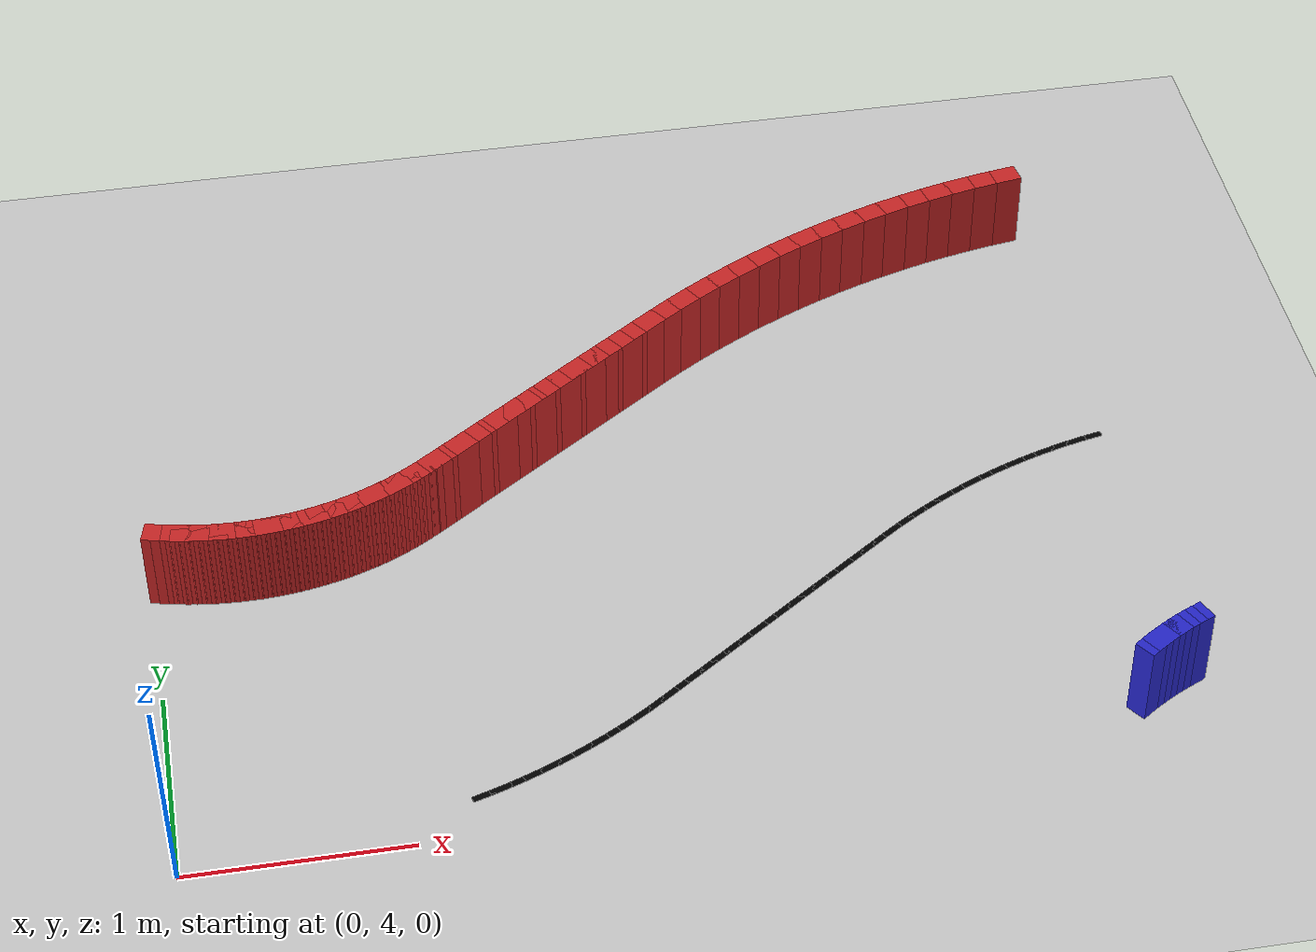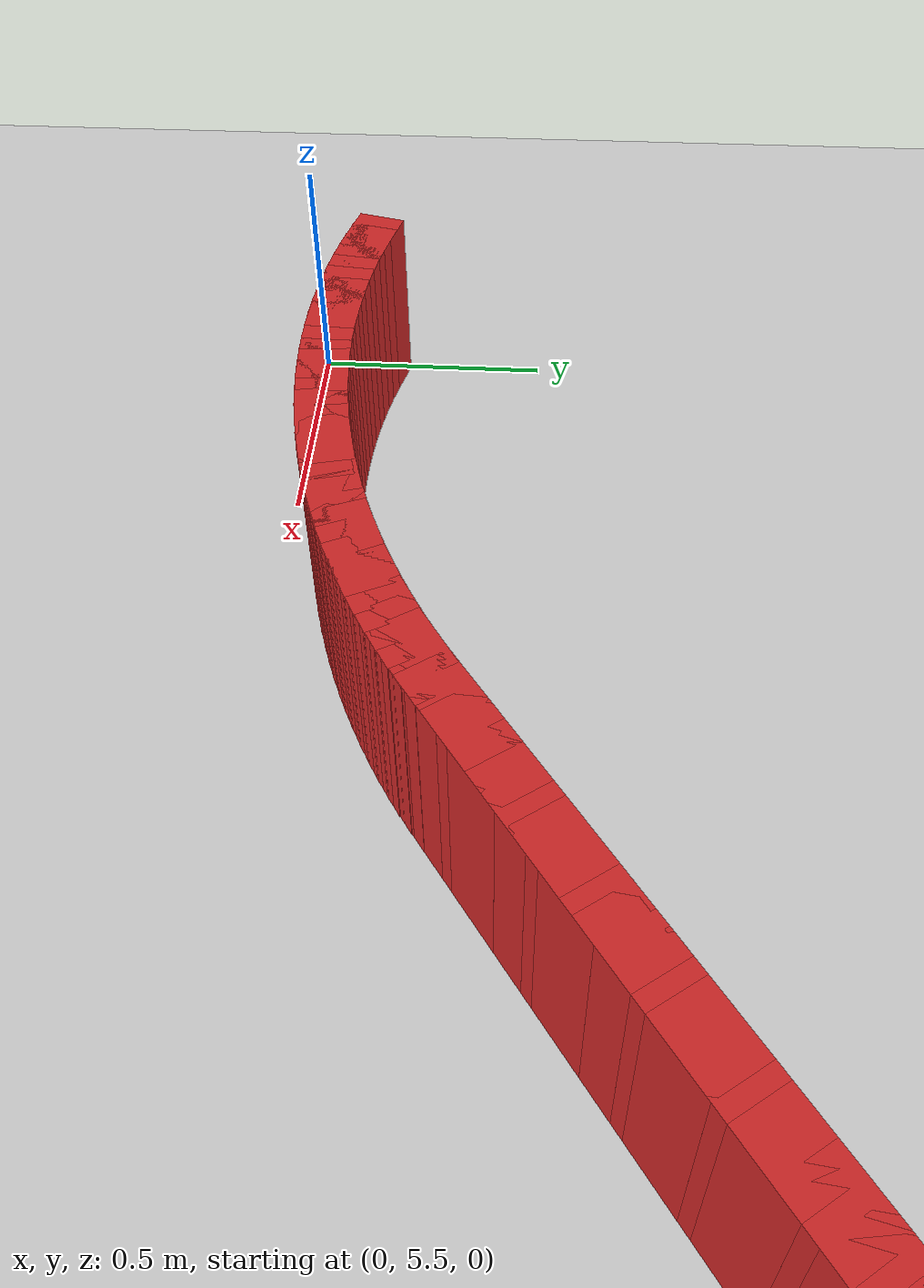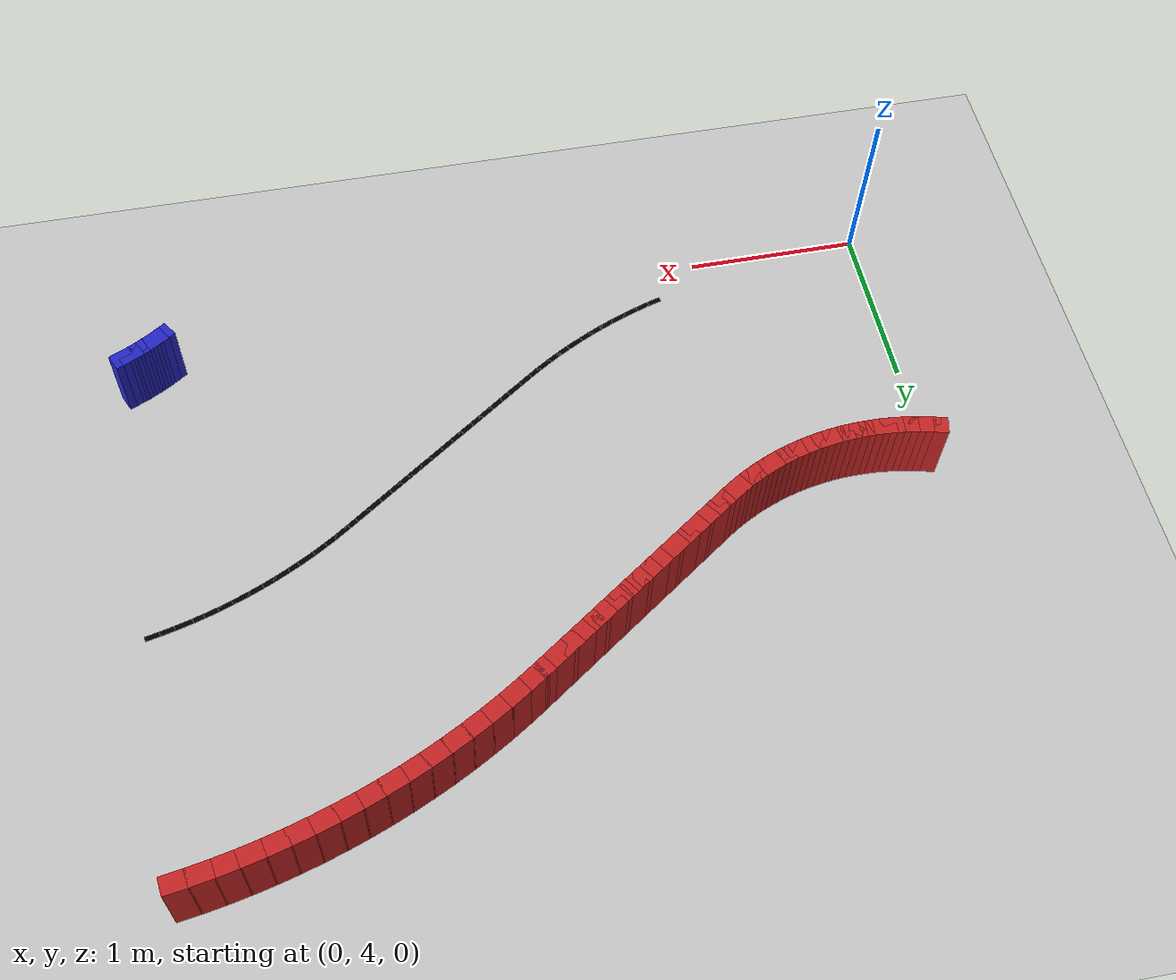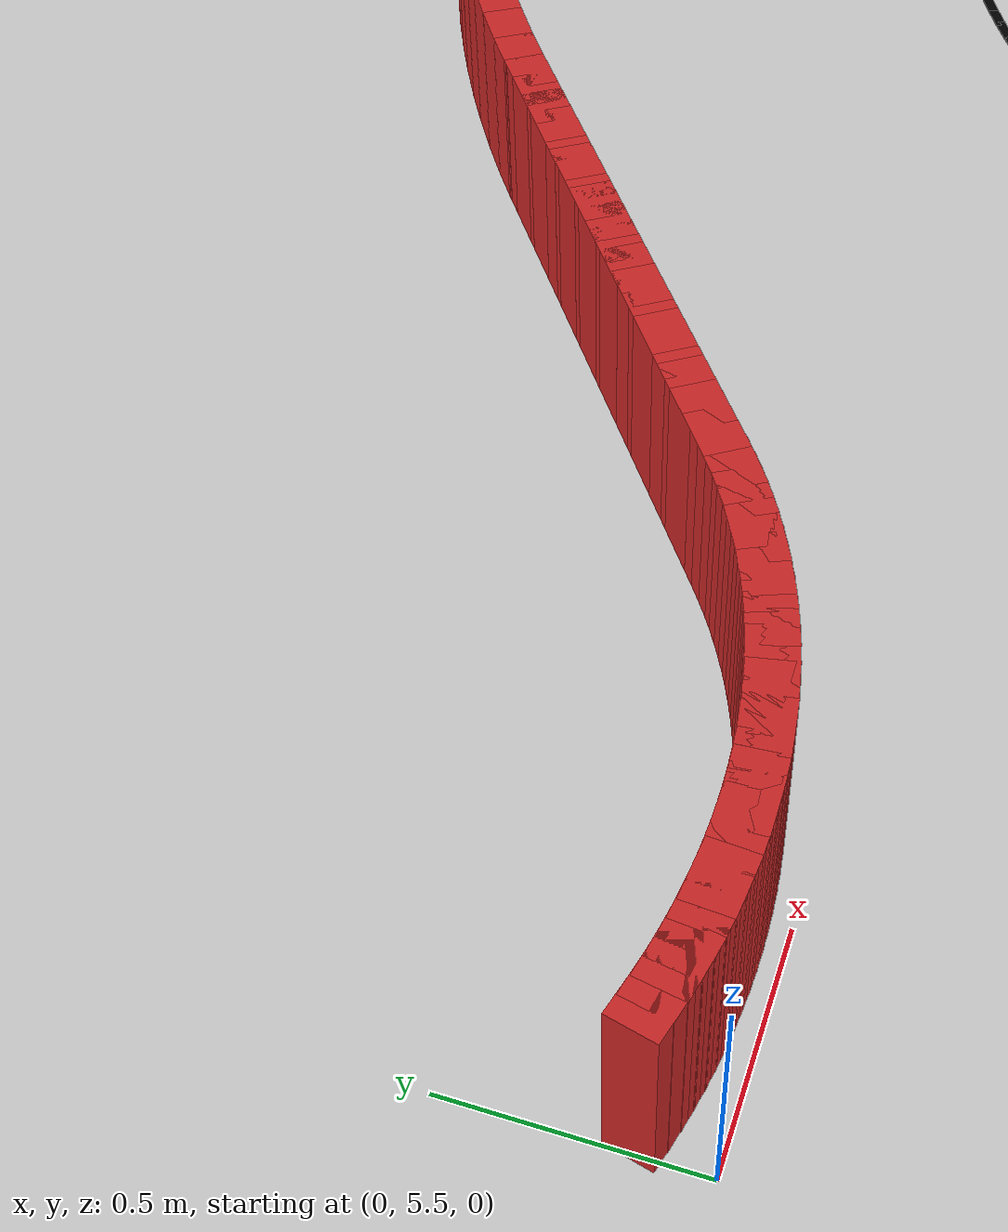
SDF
<sdf version="1.6">
 <world name="new_race_track">
  <include><uri>model://ground_plane</uri></include>
  <include><uri>model://sun</uri></include>
  <model name="iw_562">
   <static>true</static>
   <pose>4.4143 4.3629 0.200 0 0 -2.7112</pose>
   <link name="l">
    <collision name="c"><geometry><box><size>0.1333 0.1 0.4</size></box></geometry></collision>
    <visual name="v">
     <geometry><box><size>0.1333 0.1 0.4</size></box></geometry>
     <material><ambient>0.15 0.15 0.8 1</ambient><diffuse>0.15 0.15 0.8 1</diffuse></material>
    </visual>
   </link>
  </model>
  <model name="iw_563">
   <static>true</static>
   <pose>4.3767 4.3450 0.200 0 0 -2.6834</pose>
   <link name="l">
    <collision name="c"><geometry><box><size>0.1333 0.1 0.4</size></box></geometry></collision>
    <visual name="v">
     <geometry><box><size>0.1333 0.1 0.4</size></box></geometry>
     <material><ambient>0.15 0.15 0.8 1</ambient><diffuse>0.15 0.15 0.8 1</diffuse></material>
    </visual>
   </link>
  </model>
  <model name="iw_564">
   <static>true</static>
   <pose>4.3396 4.3261 0.200 0 0 -2.6557</pose>
   <link name="l">
    <collision name="c"><geometry><box><size>0.1333 0.1 0.4</size></box></geometry></collision>
    <visual name="v">
     <geometry><box><size>0.1333 0.1 0.4</size></box></geometry>
     <material><ambient>0.15 0.15 0.8 1</ambient><diffuse>0.15 0.15 0.8 1</diffuse></material>
    </visual>
   </link>
  </model>
  <model name="iw_565">
   <static>true</static>
   <pose>4.3031 4.3062 0.200 0 0 -2.6279</pose>
   <link name="l">
    <collision name="c"><geometry><box><size>0.1333 0.1 0.4</size></box></geometry></collision>
    <visual name="v">
     <geometry><box><size>0.1333 0.1 0.4</size></box></geometry>
     <material><ambient>0.15 0.15 0.8 1</ambient><diffuse>0.15 0.15 0.8 1</diffuse></material>
    </visual>
   </link>
  </model>
  <model name="iw_566">
   <static>true</static>
   <pose>4.2671 4.2852 0.200 0 0 -2.6001</pose>
   <link name="l">
    <collision name="c"><geometry><box><size>0.1333 0.1 0.4</size></box></geometry></collision>
    <visual name="v">
     <geometry><box><size>0.1333 0.1 0.4</size></box></geometry>
     <material><ambient>0.15 0.15 0.8 1</ambient><diffuse>0.15 0.15 0.8 1</diffuse></material>
    </visual>
   </link>
  </model>
  <model name="iw_567">
   <static>true</static>
   <pose>4.2317 4.2632 0.200 0 0 -2.5724</pose>
   <link name="l">
    <collision name="c"><geometry><box><size>0.1333 0.1 0.4</size></box></geometry></collision>
    <visual name="v">
     <geometry><box><size>0.1333 0.1 0.4</size></box></geometry>
     <material><ambient>0.15 0.15 0.8 1</ambient><diffuse>0.15 0.15 0.8 1</diffuse></material>
    </visual>
   </link>
  </model>
  <model name="iw_568">
   <static>true</static>
   <pose>4.1969 4.2403 0.200 0 0 -2.5446</pose>
   <link name="l">
    <collision name="c"><geometry><box><size>0.1333 0.1 0.4</size></box></geometry></collision>
    <visual name="v">
     <geometry><box><size>0.1333 0.1 0.4</size></box></geometry>
     <material><ambient>0.15 0.15 0.8 1</ambient><diffuse>0.15 0.15 0.8 1</diffuse></material>
    </visual>
   </link>
  </model>
  <model name="ow_552">
   <static>true</static>
   <pose>4.3555 7.4473 0.200 0 0 -2.9889</pose>
   <link name="l">
    <collision name="c"><geometry><box><size>0.1333 0.1 0.4</size></box></geometry></collision>
    <visual name="v">
     <geometry><box><size>0.1333 0.1 0.4</size></box></geometry>
     <material><ambient>0.8 0.15 0.15 1</ambient><diffuse>0.8 0.15 0.15 1</diffuse></material>
    </visual>
   </link>
  </model>
  <model name="ow_553">
   <static>true</static>
   <pose>4.2323 7.4266 0.200 0 0 -2.9611</pose>
   <link name="l">
    <collision name="c"><geometry><box><size>0.1333 0.1 0.4</size></box></geometry></collision>
    <visual name="v">
     <geometry><box><size>0.1333 0.1 0.4</size></box></geometry>
     <material><ambient>0.8 0.15 0.15 1</ambient><diffuse>0.8 0.15 0.15 1</diffuse></material>
    </visual>
   </link>
  </model>
  <model name="ow_554">
   <static>true</static>
   <pose>4.1097 7.4025 0.200 0 0 -2.9333</pose>
   <link name="l">
    <collision name="c"><geometry><box><size>0.1333 0.1 0.4</size></box></geometry></collision>
    <visual name="v">
     <geometry><box><size>0.1333 0.1 0.4</size></box></geometry>
     <material><ambient>0.8 0.15 0.15 1</ambient><diffuse>0.8 0.15 0.15 1</diffuse></material>
    </visual>
   </link>
  </model>
  <model name="ow_555">
   <static>true</static>
   <pose>3.9878 7.3750 0.200 0 0 -2.9056</pose>
   <link name="l">
    <collision name="c"><geometry><box><size>0.1333 0.1 0.4</size></box></geometry></collision>
    <visual name="v">
     <geometry><box><size>0.1333 0.1 0.4</size></box></geometry>
     <material><ambient>0.8 0.15 0.15 1</ambient><diffuse>0.8 0.15 0.15 1</diffuse></material>
    </visual>
   </link>
  </model>
  <model name="ow_556">
   <static>true</static>
   <pose>3.8668 7.3441 0.200 0 0 -2.8778</pose>
   <link name="l">
    <collision name="c"><geometry><box><size>0.1333 0.1 0.4</size></box></geometry></collision>
    <visual name="v">
     <geometry><box><size>0.1333 0.1 0.4</size></box></geometry>
     <material><ambient>0.8 0.15 0.15 1</ambient><diffuse>0.8 0.15 0.15 1</diffuse></material>
    </visual>
   </link>
  </model>
  <model name="ow_557">
   <static>true</static>
   <pose>3.7466 7.3098 0.200 0 0 -2.8500</pose>
   <link name="l">
    <collision name="c"><geometry><box><size>0.1333 0.1 0.4</size></box></geometry></collision>
    <visual name="v">
     <geometry><box><size>0.1333 0.1 0.4</size></box></geometry>
     <material><ambient>0.8 0.15 0.15 1</ambient><diffuse>0.8 0.15 0.15 1</diffuse></material>
    </visual>
   </link>
  </model>
  <model name="ow_558">
   <static>true</static>
   <pose>3.6275 7.2723 0.200 0 0 -2.8223</pose>
   <link name="l">
    <collision name="c"><geometry><box><size>0.1333 0.1 0.4</size></box></geometry></collision>
    <visual name="v">
     <geometry><box><size>0.1333 0.1 0.4</size></box></geometry>
     <material><ambient>0.8 0.15 0.15 1</ambient><diffuse>0.8 0.15 0.15 1</diffuse></material>
    </visual>
   </link>
  </model>
  <model name="ow_559">
   <static>true</static>
   <pose>3.5094 7.2314 0.200 0 0 -2.7945</pose>
   <link name="l">
    <collision name="c"><geometry><box><size>0.1333 0.1 0.4</size></box></geometry></collision>
    <visual name="v">
     <geometry><box><size>0.1333 0.1 0.4</size></box></geometry>
     <material><ambient>0.8 0.15 0.15 1</ambient><diffuse>0.8 0.15 0.15 1</diffuse></material>
    </visual>
   </link>
  </model>
  <model name="ow_560">
   <static>true</static>
   <pose>3.3925 7.1873 0.200 0 0 -2.7667</pose>
   <link name="l">
    <collision name="c"><geometry><box><size>0.1333 0.1 0.4</size></box></geometry></collision>
    <visual name="v">
     <geometry><box><size>0.1333 0.1 0.4</size></box></geometry>
     <material><ambient>0.8 0.15 0.15 1</ambient><diffuse>0.8 0.15 0.15 1</diffuse></material>
    </visual>
   </link>
  </model>
  <model name="ow_561">
   <static>true</static>
   <pose>3.2769 7.1399 0.200 0 0 -2.7390</pose>
   <link name="l">
    <collision name="c"><geometry><box><size>0.1333 0.1 0.4</size></box></geometry></collision>
    <visual name="v">
     <geometry><box><size>0.1333 0.1 0.4</size></box></geometry>
     <material><ambient>0.8 0.15 0.15 1</ambient><diffuse>0.8 0.15 0.15 1</diffuse></material>
    </visual>
   </link>
  </model>
  <model name="ow_562">
   <static>true</static>
   <pose>3.1626 7.0894 0.200 0 0 -2.7112</pose>
   <link name="l">
    <collision name="c"><geometry><box><size>0.1333 0.1 0.4</size></box></geometry></collision>
    <visual name="v">
     <geometry><box><size>0.1333 0.1 0.4</size></box></geometry>
     <material><ambient>0.8 0.15 0.15 1</ambient><diffuse>0.8 0.15 0.15 1</diffuse></material>
    </visual>
   </link>
  </model>
  <model name="ow_563">
   <static>true</static>
   <pose>3.0498 7.0357 0.200 0 0 -2.6834</pose>
   <link name="l">
    <collision name="c"><geometry><box><size>0.1333 0.1 0.4</size></box></geometry></collision>
    <visual name="v">
     <geometry><box><size>0.1333 0.1 0.4</size></box></geometry>
     <material><ambient>0.8 0.15 0.15 1</ambient><diffuse>0.8 0.15 0.15 1</diffuse></material>
    </visual>
   </link>
  </model>
  <model name="ow_564">
   <static>true</static>
   <pose>2.9386 6.9789 0.200 0 0 -2.6557</pose>
   <link name="l">
    <collision name="c"><geometry><box><size>0.1333 0.1 0.4</size></box></geometry></collision>
    <visual name="v">
     <geometry><box><size>0.1333 0.1 0.4</size></box></geometry>
     <material><ambient>0.8 0.15 0.15 1</ambient><diffuse>0.8 0.15 0.15 1</diffuse></material>
    </visual>
   </link>
  </model>
  <model name="ow_565">
   <static>true</static>
   <pose>2.8289 6.9190 0.200 0 0 -2.6279</pose>
   <link name="l">
    <collision name="c"><geometry><box><size>0.1333 0.1 0.4</size></box></geometry></collision>
    <visual name="v">
     <geometry><box><size>0.1333 0.1 0.4</size></box></geometry>
     <material><ambient>0.8 0.15 0.15 1</ambient><diffuse>0.8 0.15 0.15 1</diffuse></material>
    </visual>
   </link>
  </model>
  <model name="ow_566">
   <static>true</static>
   <pose>2.7209 6.8561 0.200 0 0 -2.6001</pose>
   <link name="l">
    <collision name="c"><geometry><box><size>0.1333 0.1 0.4</size></box></geometry></collision>
    <visual name="v">
     <geometry><box><size>0.1333 0.1 0.4</size></box></geometry>
     <material><ambient>0.8 0.15 0.15 1</ambient><diffuse>0.8 0.15 0.15 1</diffuse></material>
    </visual>
   </link>
  </model>
  <model name="ow_567">
   <static>true</static>
   <pose>2.6148 6.7902 0.200 0 0 -2.5724</pose>
   <link name="l">
    <collision name="c"><geometry><box><size>0.1333 0.1 0.4</size></box></geometry></collision>
    <visual name="v">
     <geometry><box><size>0.1333 0.1 0.4</size></box></geometry>
     <material><ambient>0.8 0.15 0.15 1</ambient><diffuse>0.8 0.15 0.15 1</diffuse></material>
    </visual>
   </link>
  </model>
  <model name="ow_568">
   <static>true</static>
   <pose>2.5105 6.7214 0.200 0 0 -2.5446</pose>
   <link name="l">
    <collision name="c"><geometry><box><size>0.1333 0.1 0.4</size></box></geometry></collision>
    <visual name="v">
     <geometry><box><size>0.1333 0.1 0.4</size></box></geometry>
     <material><ambient>0.8 0.15 0.15 1</ambient><diffuse>0.8 0.15 0.15 1</diffuse></material>
    </visual>
   </link>
  </model>
  <model name="ow_569">
   <static>true</static>
   <pose>2.4261 6.6632 0.200 0 0 -2.5307</pose>
   <link name="l">
    <collision name="c"><geometry><box><size>0.1300 0.1 0.4</size></box></geometry></collision>
    <visual name="v">
     <geometry><box><size>0.1300 0.1 0.4</size></box></geometry>
     <material><ambient>0.8 0.15 0.15 1</ambient><diffuse>0.8 0.15 0.15 1</diffuse></material>
    </visual>
   </link>
  </model>
  <model name="ow_570">
   <static>true</static>
   <pose>2.3606 6.6174 0.200 0 0 -2.5307</pose>
   <link name="l">
    <collision name="c"><geometry><box><size>0.1300 0.1 0.4</size></box></geometry></collision>
    <visual name="v">
     <geometry><box><size>0.1300 0.1 0.4</size></box></geometry>
     <material><ambient>0.8 0.15 0.15 1</ambient><diffuse>0.8 0.15 0.15 1</diffuse></material>
    </visual>
   </link>
  </model>
  <model name="ow_571">
   <static>true</static>
   <pose>2.2951 6.5715 0.200 0 0 -2.5307</pose>
   <link name="l">
    <collision name="c"><geometry><box><size>0.1300 0.1 0.4</size></box></geometry></collision>
    <visual name="v">
     <geometry><box><size>0.1300 0.1 0.4</size></box></geometry>
     <material><ambient>0.8 0.15 0.15 1</ambient><diffuse>0.8 0.15 0.15 1</diffuse></material>
    </visual>
   </link>
  </model>
  <model name="ow_572">
   <static>true</static>
   <pose>2.2295 6.5256 0.200 0 0 -2.5307</pose>
   <link name="l">
    <collision name="c"><geometry><box><size>0.1300 0.1 0.4</size></box></geometry></collision>
    <visual name="v">
     <geometry><box><size>0.1300 0.1 0.4</size></box></geometry>
     <material><ambient>0.8 0.15 0.15 1</ambient><diffuse>0.8 0.15 0.15 1</diffuse></material>
    </visual>
   </link>
  </model>
  <model name="ow_573">
   <static>true</static>
   <pose>2.1640 6.4797 0.200 0 0 -2.5307</pose>
   <link name="l">
    <collision name="c"><geometry><box><size>0.1300 0.1 0.4</size></box></geometry></collision>
    <visual name="v">
     <geometry><box><size>0.1300 0.1 0.4</size></box></geometry>
     <material><ambient>0.8 0.15 0.15 1</ambient><diffuse>0.8 0.15 0.15 1</diffuse></material>
    </visual>
   </link>
  </model>
  <model name="ow_574">
   <static>true</static>
   <pose>2.0985 6.4338 0.200 0 0 -2.5307</pose>
   <link name="l">
    <collision name="c"><geometry><box><size>0.1300 0.1 0.4</size></box></geometry></collision>
    <visual name="v">
     <geometry><box><size>0.1300 0.1 0.4</size></box></geometry>
     <material><ambient>0.8 0.15 0.15 1</ambient><diffuse>0.8 0.15 0.15 1</diffuse></material>
    </visual>
   </link>
  </model>
  <model name="ow_575">
   <static>true</static>
   <pose>2.0329 6.3879 0.200 0 0 -2.5307</pose>
   <link name="l">
    <collision name="c"><geometry><box><size>0.1300 0.1 0.4</size></box></geometry></collision>
    <visual name="v">
     <geometry><box><size>0.1300 0.1 0.4</size></box></geometry>
     <material><ambient>0.8 0.15 0.15 1</ambient><diffuse>0.8 0.15 0.15 1</diffuse></material>
    </visual>
   </link>
  </model>
  <model name="ow_576">
   <static>true</static>
   <pose>1.9674 6.3420 0.200 0 0 -2.5307</pose>
   <link name="l">
    <collision name="c"><geometry><box><size>0.1300 0.1 0.4</size></box></geometry></collision>
    <visual name="v">
     <geometry><box><size>0.1300 0.1 0.4</size></box></geometry>
     <material><ambient>0.8 0.15 0.15 1</ambient><diffuse>0.8 0.15 0.15 1</diffuse></material>
    </visual>
   </link>
  </model>
  <model name="ow_577">
   <static>true</static>
   <pose>1.9019 6.2962 0.200 0 0 -2.5307</pose>
   <link name="l">
    <collision name="c"><geometry><box><size>0.1300 0.1 0.4</size></box></geometry></collision>
    <visual name="v">
     <geometry><box><size>0.1300 0.1 0.4</size></box></geometry>
     <material><ambient>0.8 0.15 0.15 1</ambient><diffuse>0.8 0.15 0.15 1</diffuse></material>
    </visual>
   </link>
  </model>
  <model name="ow_578">
   <static>true</static>
   <pose>1.8364 6.2503 0.200 0 0 -2.5307</pose>
   <link name="l">
    <collision name="c"><geometry><box><size>0.1300 0.1 0.4</size></box></geometry></collision>
    <visual name="v">
     <geometry><box><size>0.1300 0.1 0.4</size></box></geometry>
     <material><ambient>0.8 0.15 0.15 1</ambient><diffuse>0.8 0.15 0.15 1</diffuse></material>
    </visual>
   </link>
  </model>
  <model name="ow_579">
   <static>true</static>
   <pose>1.7708 6.2044 0.200 0 0 -2.5307</pose>
   <link name="l">
    <collision name="c"><geometry><box><size>0.1300 0.1 0.4</size></box></geometry></collision>
    <visual name="v">
     <geometry><box><size>0.1300 0.1 0.4</size></box></geometry>
     <material><ambient>0.8 0.15 0.15 1</ambient><diffuse>0.8 0.15 0.15 1</diffuse></material>
    </visual>
   </link>
  </model>
  <model name="ow_580">
   <static>true</static>
   <pose>1.7053 6.1585 0.200 0 0 -2.5307</pose>
   <link name="l">
    <collision name="c"><geometry><box><size>0.1300 0.1 0.4</size></box></geometry></collision>
    <visual name="v">
     <geometry><box><size>0.1300 0.1 0.4</size></box></geometry>
     <material><ambient>0.8 0.15 0.15 1</ambient><diffuse>0.8 0.15 0.15 1</diffuse></material>
    </visual>
   </link>
  </model>
  <model name="ow_581">
   <static>true</static>
   <pose>1.6398 6.1126 0.200 0 0 -2.5307</pose>
   <link name="l">
    <collision name="c"><geometry><box><size>0.1300 0.1 0.4</size></box></geometry></collision>
    <visual name="v">
     <geometry><box><size>0.1300 0.1 0.4</size></box></geometry>
     <material><ambient>0.8 0.15 0.15 1</ambient><diffuse>0.8 0.15 0.15 1</diffuse></material>
    </visual>
   </link>
  </model>
  <model name="ow_582">
   <static>true</static>
   <pose>1.5742 6.0667 0.200 0 0 -2.5307</pose>
   <link name="l">
    <collision name="c"><geometry><box><size>0.1300 0.1 0.4</size></box></geometry></collision>
    <visual name="v">
     <geometry><box><size>0.1300 0.1 0.4</size></box></geometry>
     <material><ambient>0.8 0.15 0.15 1</ambient><diffuse>0.8 0.15 0.15 1</diffuse></material>
    </visual>
   </link>
  </model>
  <model name="ow_583">
   <static>true</static>
   <pose>1.5087 6.0208 0.200 0 0 -2.5307</pose>
   <link name="l">
    <collision name="c"><geometry><box><size>0.1300 0.1 0.4</size></box></geometry></collision>
    <visual name="v">
     <geometry><box><size>0.1300 0.1 0.4</size></box></geometry>
     <material><ambient>0.8 0.15 0.15 1</ambient><diffuse>0.8 0.15 0.15 1</diffuse></material>
    </visual>
   </link>
  </model>
  <model name="ow_584">
   <static>true</static>
   <pose>1.4432 5.9749 0.200 0 0 -2.5307</pose>
   <link name="l">
    <collision name="c"><geometry><box><size>0.1300 0.1 0.4</size></box></geometry></collision>
    <visual name="v">
     <geometry><box><size>0.1300 0.1 0.4</size></box></geometry>
     <material><ambient>0.8 0.15 0.15 1</ambient><diffuse>0.8 0.15 0.15 1</diffuse></material>
    </visual>
   </link>
  </model>
  <model name="ow_585">
   <static>true</static>
   <pose>1.3776 5.9291 0.200 0 0 -2.5307</pose>
   <link name="l">
    <collision name="c"><geometry><box><size>0.1300 0.1 0.4</size></box></geometry></collision>
    <visual name="v">
     <geometry><box><size>0.1300 0.1 0.4</size></box></geometry>
     <material><ambient>0.8 0.15 0.15 1</ambient><diffuse>0.8 0.15 0.15 1</diffuse></material>
    </visual>
   </link>
  </model>
  <model name="ow_586">
   <static>true</static>
   <pose>1.3121 5.8832 0.200 0 0 -2.5307</pose>
   <link name="l">
    <collision name="c"><geometry><box><size>0.1300 0.1 0.4</size></box></geometry></collision>
    <visual name="v">
     <geometry><box><size>0.1300 0.1 0.4</size></box></geometry>
     <material><ambient>0.8 0.15 0.15 1</ambient><diffuse>0.8 0.15 0.15 1</diffuse></material>
    </visual>
   </link>
  </model>
  <model name="ow_587">
   <static>true</static>
   <pose>1.2624 5.8489 0.200 0 0 -2.5443</pose>
   <link name="l">
    <collision name="c"><geometry><box><size>0.1314 0.1 0.4</size></box></geometry></collision>
    <visual name="v">
     <geometry><box><size>0.1314 0.1 0.4</size></box></geometry>
     <material><ambient>0.8 0.15 0.15 1</ambient><diffuse>0.8 0.15 0.15 1</diffuse></material>
    </visual>
   </link>
  </model>
  <model name="ow_588">
   <static>true</static>
   <pose>1.2284 5.8265 0.200 0 0 -2.5715</pose>
   <link name="l">
    <collision name="c"><geometry><box><size>0.1314 0.1 0.4</size></box></geometry></collision>
    <visual name="v">
     <geometry><box><size>0.1314 0.1 0.4</size></box></geometry>
     <material><ambient>0.8 0.15 0.15 1</ambient><diffuse>0.8 0.15 0.15 1</diffuse></material>
    </visual>
   </link>
  </model>
  <model name="ow_589">
   <static>true</static>
   <pose>1.1939 5.8049 0.200 0 0 -2.5986</pose>
   <link name="l">
    <collision name="c"><geometry><box><size>0.1314 0.1 0.4</size></box></geometry></collision>
    <visual name="v">
     <geometry><box><size>0.1314 0.1 0.4</size></box></geometry>
     <material><ambient>0.8 0.15 0.15 1</ambient><diffuse>0.8 0.15 0.15 1</diffuse></material>
    </visual>
   </link>
  </model>
  <model name="ow_590">
   <static>true</static>
   <pose>1.1587 5.7844 0.200 0 0 -2.6258</pose>
   <link name="l">
    <collision name="c"><geometry><box><size>0.1314 0.1 0.4</size></box></geometry></collision>
    <visual name="v">
     <geometry><box><size>0.1314 0.1 0.4</size></box></geometry>
     <material><ambient>0.8 0.15 0.15 1</ambient><diffuse>0.8 0.15 0.15 1</diffuse></material>
    </visual>
   </link>
  </model>
  <model name="ow_591">
   <static>true</static>
   <pose>1.1230 5.7648 0.200 0 0 -2.6529</pose>
   <link name="l">
    <collision name="c"><geometry><box><size>0.1314 0.1 0.4</size></box></geometry></collision>
    <visual name="v">
     <geometry><box><size>0.1314 0.1 0.4</size></box></geometry>
     <material><ambient>0.8 0.15 0.15 1</ambient><diffuse>0.8 0.15 0.15 1</diffuse></material>
    </visual>
   </link>
  </model>
  <model name="ow_592">
   <static>true</static>
   <pose>1.0868 5.7462 0.200 0 0 -2.6801</pose>
   <link name="l">
    <collision name="c"><geometry><box><size>0.1314 0.1 0.4</size></box></geometry></collision>
    <visual name="v">
     <geometry><box><size>0.1314 0.1 0.4</size></box></geometry>
     <material><ambient>0.8 0.15 0.15 1</ambient><diffuse>0.8 0.15 0.15 1</diffuse></material>
    </visual>
   </link>
  </model>
  <model name="ow_593">
   <static>true</static>
   <pose>1.0501 5.7285 0.200 0 0 -2.7072</pose>
   <link name="l">
    <collision name="c"><geometry><box><size>0.1314 0.1 0.4</size></box></geometry></collision>
    <visual name="v">
     <geometry><box><size>0.1314 0.1 0.4</size></box></geometry>
     <material><ambient>0.8 0.15 0.15 1</ambient><diffuse>0.8 0.15 0.15 1</diffuse></material>
    </visual>
   </link>
  </model>
  <model name="ow_594">
   <static>true</static>
   <pose>1.0130 5.7119 0.200 0 0 -2.7343</pose>
   <link name="l">
    <collision name="c"><geometry><box><size>0.1314 0.1 0.4</size></box></geometry></collision>
    <visual name="v">
     <geometry><box><size>0.1314 0.1 0.4</size></box></geometry>
     <material><ambient>0.8 0.15 0.15 1</ambient><diffuse>0.8 0.15 0.15 1</diffuse></material>
    </visual>
   </link>
  </model>
  <model name="ow_595">
   <static>true</static>
   <pose>0.9754 5.6963 0.200 0 0 -2.7615</pose>
   <link name="l">
    <collision name="c"><geometry><box><size>0.1314 0.1 0.4</size></box></geometry></collision>
    <visual name="v">
     <geometry><box><size>0.1314 0.1 0.4</size></box></geometry>
     <material><ambient>0.8 0.15 0.15 1</ambient><diffuse>0.8 0.15 0.15 1</diffuse></material>
    </visual>
   </link>
  </model>
  <model name="ow_596">
   <static>true</static>
   <pose>0.9374 5.6817 0.200 0 0 -2.7886</pose>
   <link name="l">
    <collision name="c"><geometry><box><size>0.1314 0.1 0.4</size></box></geometry></collision>
    <visual name="v">
     <geometry><box><size>0.1314 0.1 0.4</size></box></geometry>
     <material><ambient>0.8 0.15 0.15 1</ambient><diffuse>0.8 0.15 0.15 1</diffuse></material>
    </visual>
   </link>
  </model>
  <model name="ow_597">
   <static>true</static>
   <pose>0.8990 5.6681 0.200 0 0 -2.8158</pose>
   <link name="l">
    <collision name="c"><geometry><box><size>0.1314 0.1 0.4</size></box></geometry></collision>
    <visual name="v">
     <geometry><box><size>0.1314 0.1 0.4</size></box></geometry>
     <material><ambient>0.8 0.15 0.15 1</ambient><diffuse>0.8 0.15 0.15 1</diffuse></material>
    </visual>
   </link>
  </model>
  <model name="ow_598">
   <static>true</static>
   <pose>0.8602 5.6556 0.200 0 0 -2.8429</pose>
   <link name="l">
    <collision name="c"><geometry><box><size>0.1314 0.1 0.4</size></box></geometry></collision>
    <visual name="v">
     <geometry><box><size>0.1314 0.1 0.4</size></box></geometry>
     <material><ambient>0.8 0.15 0.15 1</ambient><diffuse>0.8 0.15 0.15 1</diffuse></material>
    </visual>
   </link>
  </model>
  <model name="ow_599">
   <static>true</static>
   <pose>0.8211 5.6442 0.200 0 0 -2.8701</pose>
   <link name="l">
    <collision name="c"><geometry><box><size>0.1314 0.1 0.4</size></box></geometry></collision>
    <visual name="v">
     <geometry><box><size>0.1314 0.1 0.4</size></box></geometry>
     <material><ambient>0.8 0.15 0.15 1</ambient><diffuse>0.8 0.15 0.15 1</diffuse></material>
    </visual>
   </link>
  </model>
  <model name="ow_600">
   <static>true</static>
   <pose>0.7818 5.6338 0.200 0 0 -2.8972</pose>
   <link name="l">
    <collision name="c"><geometry><box><size>0.1314 0.1 0.4</size></box></geometry></collision>
    <visual name="v">
     <geometry><box><size>0.1314 0.1 0.4</size></box></geometry>
     <material><ambient>0.8 0.15 0.15 1</ambient><diffuse>0.8 0.15 0.15 1</diffuse></material>
    </visual>
   </link>
  </model>
  <model name="ow_601">
   <static>true</static>
   <pose>0.7421 5.6245 0.200 0 0 -2.9244</pose>
   <link name="l">
    <collision name="c"><geometry><box><size>0.1314 0.1 0.4</size></box></geometry></collision>
    <visual name="v">
     <geometry><box><size>0.1314 0.1 0.4</size></box></geometry>
     <material><ambient>0.8 0.15 0.15 1</ambient><diffuse>0.8 0.15 0.15 1</diffuse></material>
    </visual>
   </link>
  </model>
  <model name="ow_602">
   <static>true</static>
   <pose>0.7023 5.6162 0.200 0 0 -2.9515</pose>
   <link name="l">
    <collision name="c"><geometry><box><size>0.1314 0.1 0.4</size></box></geometry></collision>
    <visual name="v">
     <geometry><box><size>0.1314 0.1 0.4</size></box></geometry>
     <material><ambient>0.8 0.15 0.15 1</ambient><diffuse>0.8 0.15 0.15 1</diffuse></material>
    </visual>
   </link>
  </model>
  <model name="ow_603">
   <static>true</static>
   <pose>0.6622 5.6091 0.200 0 0 -2.9787</pose>
   <link name="l">
    <collision name="c"><geometry><box><size>0.1314 0.1 0.4</size></box></geometry></collision>
    <visual name="v">
     <geometry><box><size>0.1314 0.1 0.4</size></box></geometry>
     <material><ambient>0.8 0.15 0.15 1</ambient><diffuse>0.8 0.15 0.15 1</diffuse></material>
    </visual>
   </link>
  </model>
  <model name="ow_604">
   <static>true</static>
   <pose>0.6219 5.6030 0.200 0 0 -3.0058</pose>
   <link name="l">
    <collision name="c"><geometry><box><size>0.1314 0.1 0.4</size></box></geometry></collision>
    <visual name="v">
     <geometry><box><size>0.1314 0.1 0.4</size></box></geometry>
     <material><ambient>0.8 0.15 0.15 1</ambient><diffuse>0.8 0.15 0.15 1</diffuse></material>
    </visual>
   </link>
  </model>
  <model name="ow_605">
   <static>true</static>
   <pose>0.5815 5.5981 0.200 0 0 -3.0330</pose>
   <link name="l">
    <collision name="c"><geometry><box><size>0.1314 0.1 0.4</size></box></geometry></collision>
    <visual name="v">
     <geometry><box><size>0.1314 0.1 0.4</size></box></geometry>
     <material><ambient>0.8 0.15 0.15 1</ambient><diffuse>0.8 0.15 0.15 1</diffuse></material>
    </visual>
   </link>
  </model>
  <model name="ow_606">
   <static>true</static>
   <pose>0.5410 5.5942 0.200 0 0 -3.0601</pose>
   <link name="l">
    <collision name="c"><geometry><box><size>0.1314 0.1 0.4</size></box></geometry></collision>
    <visual name="v">
     <geometry><box><size>0.1314 0.1 0.4</size></box></geometry>
     <material><ambient>0.8 0.15 0.15 1</ambient><diffuse>0.8 0.15 0.15 1</diffuse></material>
    </visual>
   </link>
  </model>
  <model name="ow_607">
   <static>true</static>
   <pose>0.5004 5.5914 0.200 0 0 -3.0873</pose>
   <link name="l">
    <collision name="c"><geometry><box><size>0.1314 0.1 0.4</size></box></geometry></collision>
    <visual name="v">
     <geometry><box><size>0.1314 0.1 0.4</size></box></geometry>
     <material><ambient>0.8 0.15 0.15 1</ambient><diffuse>0.8 0.15 0.15 1</diffuse></material>
    </visual>
   </link>
  </model>
  <model name="ow_608">
   <static>true</static>
   <pose>0.4597 5.5898 0.200 0 0 -3.1144</pose>
   <link name="l">
    <collision name="c"><geometry><box><size>0.1314 0.1 0.4</size></box></geometry></collision>
    <visual name="v">
     <geometry><box><size>0.1314 0.1 0.4</size></box></geometry>
     <material><ambient>0.8 0.15 0.15 1</ambient><diffuse>0.8 0.15 0.15 1</diffuse></material>
    </visual>
   </link>
  </model>
  <model name="ow_609">
   <static>true</static>
   <pose>0.4190 5.5892 0.200 0 0 3.1416</pose>
   <link name="l">
    <collision name="c"><geometry><box><size>0.1314 0.1 0.4</size></box></geometry></collision>
    <visual name="v">
     <geometry><box><size>0.1314 0.1 0.4</size></box></geometry>
     <material><ambient>0.8 0.15 0.15 1</ambient><diffuse>0.8 0.15 0.15 1</diffuse></material>
    </visual>
   </link>
  </model>
  <model name="ow_610">
   <static>true</static>
   <pose>0.3783 5.5898 0.200 0 0 3.1144</pose>
   <link name="l">
    <collision name="c"><geometry><box><size>0.1314 0.1 0.4</size></box></geometry></collision>
    <visual name="v">
     <geometry><box><size>0.1314 0.1 0.4</size></box></geometry>
     <material><ambient>0.8 0.15 0.15 1</ambient><diffuse>0.8 0.15 0.15 1</diffuse></material>
    </visual>
   </link>
  </model>
  <model name="ow_611">
   <static>true</static>
   <pose>0.3376 5.5914 0.200 0 0 3.0873</pose>
   <link name="l">
    <collision name="c"><geometry><box><size>0.1314 0.1 0.4</size></box></geometry></collision>
    <visual name="v">
     <geometry><box><size>0.1314 0.1 0.4</size></box></geometry>
     <material><ambient>0.8 0.15 0.15 1</ambient><diffuse>0.8 0.15 0.15 1</diffuse></material>
    </visual>
   </link>
  </model>
  <model name="ow_612">
   <static>true</static>
   <pose>0.2969 5.5942 0.200 0 0 3.0601</pose>
   <link name="l">
    <collision name="c"><geometry><box><size>0.1314 0.1 0.4</size></box></geometry></collision>
    <visual name="v">
     <geometry><box><size>0.1314 0.1 0.4</size></box></geometry>
     <material><ambient>0.8 0.15 0.15 1</ambient><diffuse>0.8 0.15 0.15 1</diffuse></material>
    </visual>
   </link>
  </model>
  <model name="ow_613">
   <static>true</static>
   <pose>0.2564 5.5981 0.200 0 0 3.0330</pose>
   <link name="l">
    <collision name="c"><geometry><box><size>0.1314 0.1 0.4</size></box></geometry></collision>
    <visual name="v">
     <geometry><box><size>0.1314 0.1 0.4</size></box></geometry>
     <material><ambient>0.8 0.15 0.15 1</ambient><diffuse>0.8 0.15 0.15 1</diffuse></material>
    </visual>
   </link>
  </model>
  <model name="ow_614">
   <static>true</static>
   <pose>0.2160 5.6030 0.200 0 0 3.0058</pose>
   <link name="l">
    <collision name="c"><geometry><box><size>0.1314 0.1 0.4</size></box></geometry></collision>
    <visual name="v">
     <geometry><box><size>0.1314 0.1 0.4</size></box></geometry>
     <material><ambient>0.8 0.15 0.15 1</ambient><diffuse>0.8 0.15 0.15 1</diffuse></material>
    </visual>
   </link>
  </model>
  <model name="ow_615">
   <static>true</static>
   <pose>0.1757 5.6091 0.200 0 0 2.9787</pose>
   <link name="l">
    <collision name="c"><geometry><box><size>0.1314 0.1 0.4</size></box></geometry></collision>
    <visual name="v">
     <geometry><box><size>0.1314 0.1 0.4</size></box></geometry>
     <material><ambient>0.8 0.15 0.15 1</ambient><diffuse>0.8 0.15 0.15 1</diffuse></material>
    </visual>
   </link>
  </model>
  <model name="ow_616">
   <static>true</static>
   <pose>0.1357 5.6162 0.200 0 0 2.9515</pose>
   <link name="l">
    <collision name="c"><geometry><box><size>0.1314 0.1 0.4</size></box></geometry></collision>
    <visual name="v">
     <geometry><box><size>0.1314 0.1 0.4</size></box></geometry>
     <material><ambient>0.8 0.15 0.15 1</ambient><diffuse>0.8 0.15 0.15 1</diffuse></material>
    </visual>
   </link>
  </model>
  <model name="ow_617">
   <static>true</static>
   <pose>0.0958 5.6245 0.200 0 0 2.9244</pose>
   <link name="l">
    <collision name="c"><geometry><box><size>0.1314 0.1 0.4</size></box></geometry></collision>
    <visual name="v">
     <geometry><box><size>0.1314 0.1 0.4</size></box></geometry>
     <material><ambient>0.8 0.15 0.15 1</ambient><diffuse>0.8 0.15 0.15 1</diffuse></material>
    </visual>
   </link>
  </model>
  <model name="ow_618">
   <static>true</static>
   <pose>0.0561 5.6338 0.200 0 0 2.8972</pose>
   <link name="l">
    <collision name="c"><geometry><box><size>0.1314 0.1 0.4</size></box></geometry></collision>
    <visual name="v">
     <geometry><box><size>0.1314 0.1 0.4</size></box></geometry>
     <material><ambient>0.8 0.15 0.15 1</ambient><diffuse>0.8 0.15 0.15 1</diffuse></material>
    </visual>
   </link>
  </model>
  <model name="line_554">
   <static>true</static>
   <pose>4.4198 5.9349 0.002 0 0 -2.9333</pose>
   <link name="l">
    <visual name="v">
     <geometry><box><size>0.1033 0.03 0.002</size></box></geometry>
     <material><ambient>0 0 0 1</ambient><diffuse>0 0 0 1</diffuse></material>
    </visual>
   </link>
  </model>
  <model name="line_555">
   <static>true</static>
   <pose>4.3386 5.9166 0.002 0 0 -2.9056</pose>
   <link name="l">
    <visual name="v">
     <geometry><box><size>0.1033 0.03 0.002</size></box></geometry>
     <material><ambient>0 0 0 1</ambient><diffuse>0 0 0 1</diffuse></material>
    </visual>
   </link>
  </model>
  <model name="line_556">
   <static>true</static>
   <pose>4.2579 5.8960 0.002 0 0 -2.8778</pose>
   <link name="l">
    <visual name="v">
     <geometry><box><size>0.1033 0.03 0.002</size></box></geometry>
     <material><ambient>0 0 0 1</ambient><diffuse>0 0 0 1</diffuse></material>
    </visual>
   </link>
  </model>
  <model name="line_557">
   <static>true</static>
   <pose>4.1778 5.8731 0.002 0 0 -2.8500</pose>
   <link name="l">
    <visual name="v">
     <geometry><box><size>0.1033 0.03 0.002</size></box></geometry>
     <material><ambient>0 0 0 1</ambient><diffuse>0 0 0 1</diffuse></material>
    </visual>
   </link>
  </model>
  <model name="line_558">
   <static>true</static>
   <pose>4.0983 5.8481 0.002 0 0 -2.8223</pose>
   <link name="l">
    <visual name="v">
     <geometry><box><size>0.1033 0.03 0.002</size></box></geometry>
     <material><ambient>0 0 0 1</ambient><diffuse>0 0 0 1</diffuse></material>
    </visual>
   </link>
  </model>
  <model name="line_559">
   <static>true</static>
   <pose>4.0196 5.8208 0.002 0 0 -2.7945</pose>
   <link name="l">
    <visual name="v">
     <geometry><box><size>0.1033 0.03 0.002</size></box></geometry>
     <material><ambient>0 0 0 1</ambient><diffuse>0 0 0 1</diffuse></material>
    </visual>
   </link>
  </model>
  <model name="line_560">
   <static>true</static>
   <pose>3.9417 5.7914 0.002 0 0 -2.7667</pose>
   <link name="l">
    <visual name="v">
     <geometry><box><size>0.1033 0.03 0.002</size></box></geometry>
     <material><ambient>0 0 0 1</ambient><diffuse>0 0 0 1</diffuse></material>
    </visual>
   </link>
  </model>
  <model name="line_561">
   <static>true</static>
   <pose>3.8646 5.7599 0.002 0 0 -2.7390</pose>
   <link name="l">
    <visual name="v">
     <geometry><box><size>0.1033 0.03 0.002</size></box></geometry>
     <material><ambient>0 0 0 1</ambient><diffuse>0 0 0 1</diffuse></material>
    </visual>
   </link>
  </model>
  <model name="line_562">
   <static>true</static>
   <pose>3.7885 5.7262 0.002 0 0 -2.7112</pose>
   <link name="l">
    <visual name="v">
     <geometry><box><size>0.1033 0.03 0.002</size></box></geometry>
     <material><ambient>0 0 0 1</ambient><diffuse>0 0 0 1</diffuse></material>
    </visual>
   </link>
  </model>
  <model name="line_563">
   <static>true</static>
   <pose>3.7133 5.6904 0.002 0 0 -2.6834</pose>
   <link name="l">
    <visual name="v">
     <geometry><box><size>0.1033 0.03 0.002</size></box></geometry>
     <material><ambient>0 0 0 1</ambient><diffuse>0 0 0 1</diffuse></material>
    </visual>
   </link>
  </model>
  <model name="line_564">
   <static>true</static>
   <pose>3.6391 5.6525 0.002 0 0 -2.6557</pose>
   <link name="l">
    <visual name="v">
     <geometry><box><size>0.1033 0.03 0.002</size></box></geometry>
     <material><ambient>0 0 0 1</ambient><diffuse>0 0 0 1</diffuse></material>
    </visual>
   </link>
  </model>
  <model name="line_565">
   <static>true</static>
   <pose>3.5660 5.6126 0.002 0 0 -2.6279</pose>
   <link name="l">
    <visual name="v">
     <geometry><box><size>0.1033 0.03 0.002</size></box></geometry>
     <material><ambient>0 0 0 1</ambient><diffuse>0 0 0 1</diffuse></material>
    </visual>
   </link>
  </model>
  <model name="line_566">
   <static>true</static>
   <pose>3.4940 5.5706 0.002 0 0 -2.6001</pose>
   <link name="l">
    <visual name="v">
     <geometry><box><size>0.1033 0.03 0.002</size></box></geometry>
     <material><ambient>0 0 0 1</ambient><diffuse>0 0 0 1</diffuse></material>
    </visual>
   </link>
  </model>
  <model name="line_567">
   <static>true</static>
   <pose>3.4232 5.5267 0.002 0 0 -2.5724</pose>
   <link name="l">
    <visual name="v">
     <geometry><box><size>0.1033 0.03 0.002</size></box></geometry>
     <material><ambient>0 0 0 1</ambient><diffuse>0 0 0 1</diffuse></material>
    </visual>
   </link>
  </model>
  <model name="line_568">
   <static>true</static>
   <pose>3.3537 5.4809 0.002 0 0 -2.5446</pose>
   <link name="l">
    <visual name="v">
     <geometry><box><size>0.1033 0.03 0.002</size></box></geometry>
     <material><ambient>0 0 0 1</ambient><diffuse>0 0 0 1</diffuse></material>
    </visual>
   </link>
  </model>
  <model name="line_569">
   <static>true</static>
   <pose>3.2865 5.4345 0.002 0 0 -2.5307</pose>
   <link name="l">
    <visual name="v">
     <geometry><box><size>0.1000 0.03 0.002</size></box></geometry>
     <material><ambient>0 0 0 1</ambient><diffuse>0 0 0 1</diffuse></material>
    </visual>
   </link>
  </model>
  <model name="line_570">
   <static>true</static>
   <pose>3.2210 5.3886 0.002 0 0 -2.5307</pose>
   <link name="l">
    <visual name="v">
     <geometry><box><size>0.1000 0.03 0.002</size></box></geometry>
     <material><ambient>0 0 0 1</ambient><diffuse>0 0 0 1</diffuse></material>
    </visual>
   </link>
  </model>
  <model name="line_571">
   <static>true</static>
   <pose>3.1554 5.3427 0.002 0 0 -2.5307</pose>
   <link name="l">
    <visual name="v">
     <geometry><box><size>0.1000 0.03 0.002</size></box></geometry>
     <material><ambient>0 0 0 1</ambient><diffuse>0 0 0 1</diffuse></material>
    </visual>
   </link>
  </model>
  <model name="line_572">
   <static>true</static>
   <pose>3.0899 5.2969 0.002 0 0 -2.5307</pose>
   <link name="l">
    <visual name="v">
     <geometry><box><size>0.1000 0.03 0.002</size></box></geometry>
     <material><ambient>0 0 0 1</ambient><diffuse>0 0 0 1</diffuse></material>
    </visual>
   </link>
  </model>
  <model name="line_573">
   <static>true</static>
   <pose>3.0244 5.2510 0.002 0 0 -2.5307</pose>
   <link name="l">
    <visual name="v">
     <geometry><box><size>0.1000 0.03 0.002</size></box></geometry>
     <material><ambient>0 0 0 1</ambient><diffuse>0 0 0 1</diffuse></material>
    </visual>
   </link>
  </model>
  <model name="line_574">
   <static>true</static>
   <pose>2.9588 5.2051 0.002 0 0 -2.5307</pose>
   <link name="l">
    <visual name="v">
     <geometry><box><size>0.1000 0.03 0.002</size></box></geometry>
     <material><ambient>0 0 0 1</ambient><diffuse>0 0 0 1</diffuse></material>
    </visual>
   </link>
  </model>
  <model name="line_575">
   <static>true</static>
   <pose>2.8933 5.1592 0.002 0 0 -2.5307</pose>
   <link name="l">
    <visual name="v">
     <geometry><box><size>0.1000 0.03 0.002</size></box></geometry>
     <material><ambient>0 0 0 1</ambient><diffuse>0 0 0 1</diffuse></material>
    </visual>
   </link>
  </model>
  <model name="line_576">
   <static>true</static>
   <pose>2.8278 5.1133 0.002 0 0 -2.5307</pose>
   <link name="l">
    <visual name="v">
     <geometry><box><size>0.1000 0.03 0.002</size></box></geometry>
     <material><ambient>0 0 0 1</ambient><diffuse>0 0 0 1</diffuse></material>
    </visual>
   </link>
  </model>
  <model name="line_577">
   <static>true</static>
   <pose>2.7622 5.0674 0.002 0 0 -2.5307</pose>
   <link name="l">
    <visual name="v">
     <geometry><box><size>0.1000 0.03 0.002</size></box></geometry>
     <material><ambient>0 0 0 1</ambient><diffuse>0 0 0 1</diffuse></material>
    </visual>
   </link>
  </model>
  <model name="line_578">
   <static>true</static>
   <pose>2.6967 5.0215 0.002 0 0 -2.5307</pose>
   <link name="l">
    <visual name="v">
     <geometry><box><size>0.1000 0.03 0.002</size></box></geometry>
     <material><ambient>0 0 0 1</ambient><diffuse>0 0 0 1</diffuse></material>
    </visual>
   </link>
  </model>
  <model name="line_579">
   <static>true</static>
   <pose>2.6312 4.9757 0.002 0 0 -2.5307</pose>
   <link name="l">
    <visual name="v">
     <geometry><box><size>0.1000 0.03 0.002</size></box></geometry>
     <material><ambient>0 0 0 1</ambient><diffuse>0 0 0 1</diffuse></material>
    </visual>
   </link>
  </model>
  <model name="line_580">
   <static>true</static>
   <pose>2.5657 4.9298 0.002 0 0 -2.5307</pose>
   <link name="l">
    <visual name="v">
     <geometry><box><size>0.1000 0.03 0.002</size></box></geometry>
     <material><ambient>0 0 0 1</ambient><diffuse>0 0 0 1</diffuse></material>
    </visual>
   </link>
  </model>
  <model name="line_581">
   <static>true</static>
   <pose>2.5001 4.8839 0.002 0 0 -2.5307</pose>
   <link name="l">
    <visual name="v">
     <geometry><box><size>0.1000 0.03 0.002</size></box></geometry>
     <material><ambient>0 0 0 1</ambient><diffuse>0 0 0 1</diffuse></material>
    </visual>
   </link>
  </model>
  <model name="line_582">
   <static>true</static>
   <pose>2.4346 4.8380 0.002 0 0 -2.5307</pose>
   <link name="l">
    <visual name="v">
     <geometry><box><size>0.1000 0.03 0.002</size></box></geometry>
     <material><ambient>0 0 0 1</ambient><diffuse>0 0 0 1</diffuse></material>
    </visual>
   </link>
  </model>
  <model name="line_583">
   <static>true</static>
   <pose>2.3691 4.7921 0.002 0 0 -2.5307</pose>
   <link name="l">
    <visual name="v">
     <geometry><box><size>0.1000 0.03 0.002</size></box></geometry>
     <material><ambient>0 0 0 1</ambient><diffuse>0 0 0 1</diffuse></material>
    </visual>
   </link>
  </model>
  <model name="line_584">
   <static>true</static>
   <pose>2.3035 4.7462 0.002 0 0 -2.5307</pose>
   <link name="l">
    <visual name="v">
     <geometry><box><size>0.1000 0.03 0.002</size></box></geometry>
     <material><ambient>0 0 0 1</ambient><diffuse>0 0 0 1</diffuse></material>
    </visual>
   </link>
  </model>
  <model name="line_585">
   <static>true</static>
   <pose>2.2380 4.7003 0.002 0 0 -2.5307</pose>
   <link name="l">
    <visual name="v">
     <geometry><box><size>0.1000 0.03 0.002</size></box></geometry>
     <material><ambient>0 0 0 1</ambient><diffuse>0 0 0 1</diffuse></material>
    </visual>
   </link>
  </model>
  <model name="line_586">
   <static>true</static>
   <pose>2.1725 4.6544 0.002 0 0 -2.5307</pose>
   <link name="l">
    <visual name="v">
     <geometry><box><size>0.1000 0.03 0.002</size></box></geometry>
     <material><ambient>0 0 0 1</ambient><diffuse>0 0 0 1</diffuse></material>
    </visual>
   </link>
  </model>
  <model name="line_587">
   <static>true</static>
   <pose>2.1060 4.6086 0.002 0 0 -2.5443</pose>
   <link name="l">
    <visual name="v">
     <geometry><box><size>0.1014 0.03 0.002</size></box></geometry>
     <material><ambient>0 0 0 1</ambient><diffuse>0 0 0 1</diffuse></material>
    </visual>
   </link>
  </model>
  <model name="line_588">
   <static>true</static>
   <pose>2.0381 4.5637 0.002 0 0 -2.5715</pose>
   <link name="l">
    <visual name="v">
     <geometry><box><size>0.1014 0.03 0.002</size></box></geometry>
     <material><ambient>0 0 0 1</ambient><diffuse>0 0 0 1</diffuse></material>
    </visual>
   </link>
  </model>
  <model name="line_589">
   <static>true</static>
   <pose>1.9689 4.5207 0.002 0 0 -2.5986</pose>
   <link name="l">
    <visual name="v">
     <geometry><box><size>0.1014 0.03 0.002</size></box></geometry>
     <material><ambient>0 0 0 1</ambient><diffuse>0 0 0 1</diffuse></material>
    </visual>
   </link>
  </model>
  <model name="line_590">
   <static>true</static>
   <pose>1.8986 4.4796 0.002 0 0 -2.6258</pose>
   <link name="l">
    <visual name="v">
     <geometry><box><size>0.1014 0.03 0.002</size></box></geometry>
     <material><ambient>0 0 0 1</ambient><diffuse>0 0 0 1</diffuse></material>
    </visual>
   </link>
  </model>
  <model name="line_591">
   <static>true</static>
   <pose>1.8272 4.4404 0.002 0 0 -2.6529</pose>
   <link name="l">
    <visual name="v">
     <geometry><box><size>0.1014 0.03 0.002</size></box></geometry>
     <material><ambient>0 0 0 1</ambient><diffuse>0 0 0 1</diffuse></material>
    </visual>
   </link>
  </model>
  <model name="line_592">
   <static>true</static>
   <pose>1.7548 4.4031 0.002 0 0 -2.6801</pose>
   <link name="l">
    <visual name="v">
     <geometry><box><size>0.1014 0.03 0.002</size></box></geometry>
     <material><ambient>0 0 0 1</ambient><diffuse>0 0 0 1</diffuse></material>
    </visual>
   </link>
  </model>
  <model name="line_593">
   <static>true</static>
   <pose>1.6814 4.3678 0.002 0 0 -2.7072</pose>
   <link name="l">
    <visual name="v">
     <geometry><box><size>0.1014 0.03 0.002</size></box></geometry>
     <material><ambient>0 0 0 1</ambient><diffuse>0 0 0 1</diffuse></material>
    </visual>
   </link>
  </model>
  <model name="line_594">
   <static>true</static>
   <pose>1.6071 4.3346 0.002 0 0 -2.7343</pose>
   <link name="l">
    <visual name="v">
     <geometry><box><size>0.1014 0.03 0.002</size></box></geometry>
     <material><ambient>0 0 0 1</ambient><diffuse>0 0 0 1</diffuse></material>
    </visual>
   </link>
  </model>
  <model name="line_595">
   <static>true</static>
   <pose>1.5319 4.3033 0.002 0 0 -2.7615</pose>
   <link name="l">
    <visual name="v">
     <geometry><box><size>0.1014 0.03 0.002</size></box></geometry>
     <material><ambient>0 0 0 1</ambient><diffuse>0 0 0 1</diffuse></material>
    </visual>
   </link>
  </model>
  <model name="line_596">
   <static>true</static>
   <pose>1.4559 4.2741 0.002 0 0 -2.7886</pose>
   <link name="l">
    <visual name="v">
     <geometry><box><size>0.1014 0.03 0.002</size></box></geometry>
     <material><ambient>0 0 0 1</ambient><diffuse>0 0 0 1</diffuse></material>
    </visual>
   </link>
  </model>
  <model name="line_597">
   <static>true</static>
   <pose>1.3791 4.2470 0.002 0 0 -2.8158</pose>
   <link name="l">
    <visual name="v">
     <geometry><box><size>0.1014 0.03 0.002</size></box></geometry>
     <material><ambient>0 0 0 1</ambient><diffuse>0 0 0 1</diffuse></material>
    </visual>
   </link>
  </model>
  <model name="line_598">
   <static>true</static>
   <pose>1.3016 4.2220 0.002 0 0 -2.8429</pose>
   <link name="l">
    <visual name="v">
     <geometry><box><size>0.1014 0.03 0.002</size></box></geometry>
     <material><ambient>0 0 0 1</ambient><diffuse>0 0 0 1</diffuse></material>
    </visual>
   </link>
  </model>
 </world>
</sdf>
